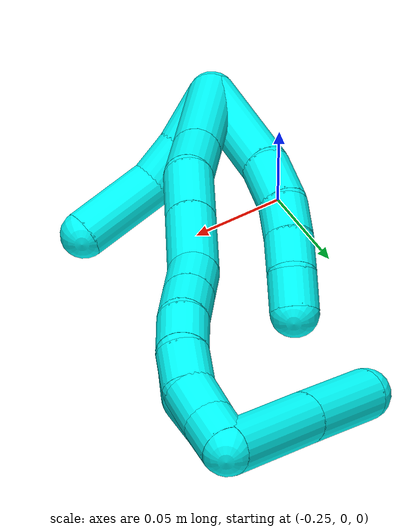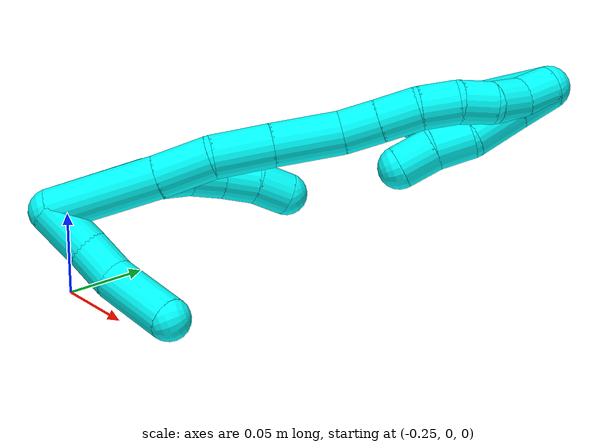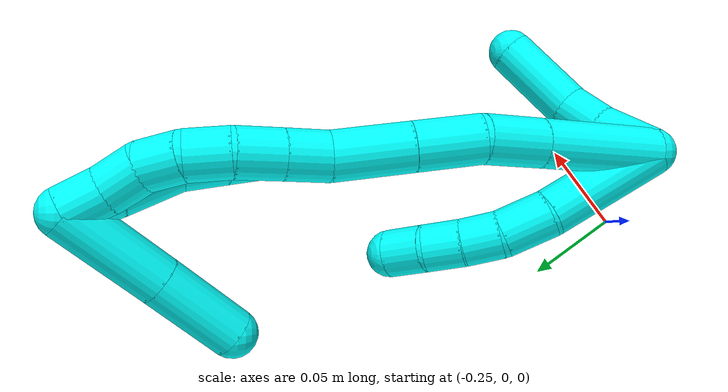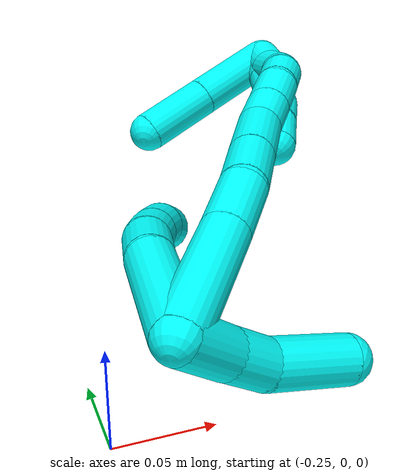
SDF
<sdf version="1.7">
 <world name="default">
  <model name="3">
   <static>0</static>
   <link name="3">
    <collision name="collision-cylinder-e_1_2_8">
     <pose>0.001299 0.016685 0.026839 -0.55619 0.04107 -0.011727</pose>
     <geometry><cylinder><radius>0.0125</radius><length>0.063258</length></cylinder></geometry>
     <surface>
      <friction><ode><mu>1.16</mu><mu2>1.16</mu2><slip1>0</slip1><slip2>0</slip2></ode></friction>
      <contact><ode><kp>1e+06</kp><kd>1</kd><max_vel>0</max_vel><min_depth>0.001</min_depth></ode></contact>
     </surface>
    </collision>
    <visual name="visual-cylinder-e_1_2_8">
     <pose>0.001299 0.016685 0.026839 -0.55619 0.04107 -0.011727</pose>
     <geometry><cylinder><radius>0.0125</radius><length>0.063258</length></cylinder></geometry>
     <material><ambient>0.003922 1 0.996078 1</ambient></material>
    </visual>
    <collision name="collision-cylinder-e_2_8_9">
     <pose>0.005613 0.039835 0.064734 -0.529141 0.231241 -0.062908</pose>
     <geometry><cylinder><radius>0.0125</radius><length>0.026316</length></cylinder></geometry>
     <surface>
      <friction><ode><mu>1.16</mu><mu2>1.16</mu2><slip1>0</slip1><slip2>0</slip2></ode></friction>
      <contact><ode><kp>1e+06</kp><kd>1</kd><max_vel>0</max_vel><min_depth>0.001</min_depth></ode></contact>
     </surface>
    </collision>
    <visual name="visual-cylinder-e_2_8_9">
     <pose>0.005613 0.039835 0.064734 -0.529141 0.231241 -0.062908</pose>
     <geometry><cylinder><radius>0.0125</radius><length>0.026316</length></cylinder></geometry>
     <material><ambient>0.003922 1 0.996078 1</ambient></material>
    </visual>
    <collision name="collision-cylinder-e_3_9_10">
     <pose>0.012804 0.049923 0.084127 -0.409996 0.430558 -0.090868</pose>
     <geometry><cylinder><radius>0.0125</radius><length>0.020007</length></cylinder></geometry>
     <surface>
      <friction><ode><mu>1.16</mu><mu2>1.16</mu2><slip1>0</slip1><slip2>0</slip2></ode></friction>
      <contact><ode><kp>1e+06</kp><kd>1</kd><max_vel>0</max_vel><min_depth>0.001</min_depth></ode></contact>
     </surface>
    </collision>
    <visual name="visual-cylinder-e_3_9_10">
     <pose>0.012804 0.049923 0.084127 -0.409996 0.430558 -0.090868</pose>
     <geometry><cylinder><radius>0.0125</radius><length>0.020007</length></cylinder></geometry>
     <material><ambient>0.003922 1 0.996078 1</ambient></material>
    </visual>
    <collision name="collision-cylinder-e_4_10_11">
     <pose>0.021813 0.056689 0.100701 -0.36448 0.50155 -0.094346</pose>
     <geometry><cylinder><radius>0.0125</radius><length>0.020108</length></cylinder></geometry>
     <surface>
      <friction><ode><mu>1.16</mu><mu2>1.16</mu2><slip1>0</slip1><slip2>0</slip2></ode></friction>
      <contact><ode><kp>1e+06</kp><kd>1</kd><max_vel>0</max_vel><min_depth>0.001</min_depth></ode></contact>
     </surface>
    </collision>
    <visual name="visual-cylinder-e_4_10_11">
     <pose>0.021813 0.056689 0.100701 -0.36448 0.50155 -0.094346</pose>
     <geometry><cylinder><radius>0.0125</radius><length>0.020108</length></cylinder></geometry>
     <material><ambient>0.003922 1 0.996078 1</ambient></material>
    </visual>
    <collision name="collision-cylinder-e_5_11_6">
     <pose>0.033063 0.063559 0.115871 -0.493286 0.68395 -0.178762</pose>
     <geometry><cylinder><radius>0.0125</radius><length>0.020311</length></cylinder></geometry>
     <surface>
      <friction><ode><mu>1.16</mu><mu2>1.16</mu2><slip1>0</slip1><slip2>0</slip2></ode></friction>
      <contact><ode><kp>1e+06</kp><kd>1</kd><max_vel>0</max_vel><min_depth>0.001</min_depth></ode></contact>
     </surface>
    </collision>
    <visual name="visual-cylinder-e_5_11_6">
     <pose>0.033063 0.063559 0.115871 -0.493286 0.68395 -0.178762</pose>
     <geometry><cylinder><radius>0.0125</radius><length>0.020311</length></cylinder></geometry>
     <material><ambient>0.003922 1 0.996078 1</ambient></material>
    </visual>
    <collision name="collision-cylinder-e_1_2_12">
     <pose>0.013862 -0.002428 0.006477 0.358642 1.10795 0.223328</pose>
     <geometry><cylinder><radius>0.0125</radius><length>0.030983</length></cylinder></geometry>
     <surface>
      <friction><ode><mu>1.16</mu><mu2>1.16</mu2><slip1>0</slip1><slip2>0</slip2></ode></friction>
      <contact><ode><kp>1e+06</kp><kd>1</kd><max_vel>0</max_vel><min_depth>0.001</min_depth></ode></contact>
     </surface>
    </collision>
    <visual name="visual-cylinder-e_1_2_12">
     <pose>0.013862 -0.002428 0.006477 0.358642 1.10795 0.223328</pose>
     <geometry><cylinder><radius>0.0125</radius><length>0.030983</length></cylinder></geometry>
     <material><ambient>0.003922 1 0.996078 1</ambient></material>
    </visual>
    <collision name="collision-cylinder-e_2_12_13">
     <pose>0.038049 -0.008316 0.017537 0.646677 1.06323 0.389146</pose>
     <geometry><cylinder><radius>0.0125</radius><length>0.02363</length></cylinder></geometry>
     <surface>
      <friction><ode><mu>1.16</mu><mu2>1.16</mu2><slip1>0</slip1><slip2>0</slip2></ode></friction>
      <contact><ode><kp>1e+06</kp><kd>1</kd><max_vel>0</max_vel><min_depth>0.001</min_depth></ode></contact>
     </surface>
    </collision>
    <visual name="visual-cylinder-e_2_12_13">
     <pose>0.038049 -0.008316 0.017537 0.646677 1.06323 0.389146</pose>
     <geometry><cylinder><radius>0.0125</radius><length>0.02363</length></cylinder></geometry>
     <material><ambient>0.003922 1 0.996078 1</ambient></material>
    </visual>
    <collision name="collision-cylinder-e_3_13_5">
     <pose>0.063622 -0.023836 0.033828 0.800204 0.736772 0.323641</pose>
     <geometry><cylinder><radius>0.0125</radius><length>0.045387</length></cylinder></geometry>
     <surface>
      <friction><ode><mu>1.16</mu><mu2>1.16</mu2><slip1>0</slip1><slip2>0</slip2></ode></friction>
      <contact><ode><kp>1e+06</kp><kd>1</kd><max_vel>0</max_vel><min_depth>0.001</min_depth></ode></contact>
     </surface>
    </collision>
    <visual name="visual-cylinder-e_3_13_5">
     <pose>0.063622 -0.023836 0.033828 0.800204 0.736772 0.323641</pose>
     <geometry><cylinder><radius>0.0125</radius><length>0.045387</length></cylinder></geometry>
     <material><ambient>0.003922 1 0.996078 1</ambient></material>
    </visual>
    <collision name="collision-cylinder-e_1_2_14">
     <pose>0.002096 -0.001605 0.032083 0.049989 0.065148 0.001629</pose>
     <geometry><cylinder><radius>0.0125</radius><length>0.064383</length></cylinder></geometry>
     <surface>
      <friction><ode><mu>1.16</mu><mu2>1.16</mu2><slip1>0</slip1><slip2>0</slip2></ode></friction>
      <contact><ode><kp>1e+06</kp><kd>1</kd><max_vel>0</max_vel><min_depth>0.001</min_depth></ode></contact>
     </surface>
    </collision>
    <visual name="visual-cylinder-e_1_2_14">
     <pose>0.002096 -0.001605 0.032083 0.049989 0.065148 0.001629</pose>
     <geometry><cylinder><radius>0.0125</radius><length>0.064383</length></cylinder></geometry>
     <material><ambient>0.003922 1 0.996078 1</ambient></material>
    </visual>
    <collision name="collision-cylinder-e_2_14_15">
     <pose>0.004465 -0.00415 0.080165 0.058681 0.017095 0.000502</pose>
     <geometry><cylinder><radius>0.0125</radius><length>0.032057</length></cylinder></geometry>
     <surface>
      <friction><ode><mu>1.16</mu><mu2>1.16</mu2><slip1>0</slip1><slip2>0</slip2></ode></friction>
      <contact><ode><kp>1e+06</kp><kd>1</kd><max_vel>0</max_vel><min_depth>0.001</min_depth></ode></contact>
     </surface>
    </collision>
    <visual name="visual-cylinder-e_2_14_15">
     <pose>0.004465 -0.00415 0.080165 0.058681 0.017095 0.000502</pose>
     <geometry><cylinder><radius>0.0125</radius><length>0.032057</length></cylinder></geometry>
     <material><ambient>0.003922 1 0.996078 1</ambient></material>
    </visual>
    <collision name="collision-cylinder-e_3_15_16">
     <pose>0.00759 -0.002275 0.112734 -0.168291 0.167991 -0.014202</pose>
     <geometry><cylinder><radius>0.0125</radius><length>0.034097</length></cylinder></geometry>
     <surface>
      <friction><ode><mu>1.16</mu><mu2>1.16</mu2><slip1>0</slip1><slip2>0</slip2></ode></friction>
      <contact><ode><kp>1e+06</kp><kd>1</kd><max_vel>0</max_vel><min_depth>0.001</min_depth></ode></contact>
     </surface>
    </collision>
    <visual name="visual-cylinder-e_3_15_16">
     <pose>0.00759 -0.002275 0.112734 -0.168291 0.167991 -0.014202</pose>
     <geometry><cylinder><radius>0.0125</radius><length>0.034097</length></cylinder></geometry>
     <material><ambient>0.003922 1 0.996078 1</ambient></material>
    </visual>
    <collision name="collision-cylinder-e_4_16_17">
     <pose>0.014131 0.003971 0.148773 -0.174393 0.184579 -0.016181</pose>
     <geometry><cylinder><radius>0.0125</radius><length>0.040218</length></cylinder></geometry>
     <surface>
      <friction><ode><mu>1.16</mu><mu2>1.16</mu2><slip1>0</slip1><slip2>0</slip2></ode></friction>
      <contact><ode><kp>1e+06</kp><kd>1</kd><max_vel>0</max_vel><min_depth>0.001</min_depth></ode></contact>
     </surface>
    </collision>
    <visual name="visual-cylinder-e_4_16_17">
     <pose>0.014131 0.003971 0.148773 -0.174393 0.184579 -0.016181</pose>
     <geometry><cylinder><radius>0.0125</radius><length>0.040218</length></cylinder></geometry>
     <material><ambient>0.003922 1 0.996078 1</ambient></material>
    </visual>
    <collision name="collision-cylinder-e_5_17_18">
     <pose>0.018581 0.007095 0.179333 0.027515 0.068268 0.00094</pose>
     <geometry><cylinder><radius>0.0125</radius><length>0.022245</length></cylinder></geometry>
     <surface>
      <friction><ode><mu>1.16</mu><mu2>1.16</mu2><slip1>0</slip1><slip2>0</slip2></ode></friction>
      <contact><ode><kp>1e+06</kp><kd>1</kd><max_vel>0</max_vel><min_depth>0.001</min_depth></ode></contact>
     </surface>
    </collision>
    <visual name="visual-cylinder-e_5_17_18">
     <pose>0.018581 0.007095 0.179333 0.027515 0.068268 0.00094</pose>
     <geometry><cylinder><radius>0.0125</radius><length>0.022245</length></cylinder></geometry>
     <material><ambient>0.003922 1 0.996078 1</ambient></material>
    </visual>
    <collision name="collision-cylinder-e_6_18_19">
     <pose>0.019992 0.006504 0.202068 0.02457 0.056021 0.000688</pose>
     <geometry><cylinder><radius>0.0125</radius><length>0.023329</length></cylinder></geometry>
     <surface>
      <friction><ode><mu>1.16</mu><mu2>1.16</mu2><slip1>0</slip1><slip2>0</slip2></ode></friction>
      <contact><ode><kp>1e+06</kp><kd>1</kd><max_vel>0</max_vel><min_depth>0.001</min_depth></ode></contact>
     </surface>
    </collision>
    <visual name="visual-cylinder-e_6_18_19">
     <pose>0.019992 0.006504 0.202068 0.02457 0.056021 0.000688</pose>
     <geometry><cylinder><radius>0.0125</radius><length>0.023329</length></cylinder></geometry>
     <material><ambient>0.003922 1 0.996078 1</ambient></material>
    </visual>
    <collision name="collision-cylinder-e_7_19_20">
     <pose>0.022893 0.007652 0.224407 -0.133287 0.20533 -0.013752</pose>
     <geometry><cylinder><radius>0.0125</radius><length>0.022049</length></cylinder></geometry>
     <surface>
      <friction><ode><mu>1.16</mu><mu2>1.16</mu2><slip1>0</slip1><slip2>0</slip2></ode></friction>
      <contact><ode><kp>1e+06</kp><kd>1</kd><max_vel>0</max_vel><min_depth>0.001</min_depth></ode></contact>
     </surface>
    </collision>
    <visual name="visual-cylinder-e_7_19_20">
     <pose>0.022893 0.007652 0.224407 -0.133287 0.20533 -0.013752</pose>
     <geometry><cylinder><radius>0.0125</radius><length>0.022049</length></cylinder></geometry>
     <material><ambient>0.003922 1 0.996078 1</ambient></material>
    </visual>
    <collision name="collision-cylinder-e_8_20_21">
     <pose>0.028904 0.012757 0.243801 -0.399452 0.379285 -0.077671</pose>
     <geometry><cylinder><radius>0.0125</radius><length>0.020324</length></cylinder></geometry>
     <surface>
      <friction><ode><mu>1.16</mu><mu2>1.16</mu2><slip1>0</slip1><slip2>0</slip2></ode></friction>
      <contact><ode><kp>1e+06</kp><kd>1</kd><max_vel>0</max_vel><min_depth>0.001</min_depth></ode></contact>
     </surface>
    </collision>
    <visual name="visual-cylinder-e_8_20_21">
     <pose>0.028904 0.012757 0.243801 -0.399452 0.379285 -0.077671</pose>
     <geometry><cylinder><radius>0.0125</radius><length>0.020324</length></cylinder></geometry>
     <material><ambient>0.003922 1 0.996078 1</ambient></material>
    </visual>
    <collision name="collision-cylinder-e_9_21_22">
     <pose>0.034448 0.022628 0.260374 -0.666828 0.17592 -0.061067</pose>
     <geometry><cylinder><radius>0.0125</radius><length>0.020362</length></cylinder></geometry>
     <surface>
      <friction><ode><mu>1.16</mu><mu2>1.16</mu2><slip1>0</slip1><slip2>0</slip2></ode></friction>
      <contact><ode><kp>1e+06</kp><kd>1</kd><max_vel>0</max_vel><min_depth>0.001</min_depth></ode></contact>
     </surface>
    </collision>
    <visual name="visual-cylinder-e_9_21_22">
     <pose>0.034448 0.022628 0.260374 -0.666828 0.17592 -0.061067</pose>
     <geometry><cylinder><radius>0.0125</radius><length>0.020362</length></cylinder></geometry>
     <material><ambient>0.003922 1 0.996078 1</ambient></material>
    </visual>
    <collision name="collision-cylinder-e_10_22_1">
     <pose>0.036144 0.033778 0.277475 -0.492564 -0.008229 0.002069</pose>
     <geometry><cylinder><radius>0.0125</radius><length>0.020937</length></cylinder></geometry>
     <surface>
      <friction><ode><mu>1.16</mu><mu2>1.16</mu2><slip1>0</slip1><slip2>0</slip2></ode></friction>
      <contact><ode><kp>1e+06</kp><kd>1</kd><max_vel>0</max_vel><min_depth>0.001</min_depth></ode></contact>
     </surface>
    </collision>
    <visual name="visual-cylinder-e_10_22_1">
     <pose>0.036144 0.033778 0.277475 -0.492564 -0.008229 0.002069</pose>
     <geometry><cylinder><radius>0.0125</radius><length>0.020937</length></cylinder></geometry>
     <material><ambient>0.003922 1 0.996078 1</ambient></material>
    </visual>
    <collision name="collision-cylinder-e_1_1_23">
     <pose>0.038182 0.034793 0.274937 2.81866 0.16969 0.962422</pose>
     <geometry><cylinder><radius>0.0125</radius><length>0.025166</length></cylinder></geometry>
     <surface>
      <friction><ode><mu>1.16</mu><mu2>1.16</mu2><slip1>0</slip1><slip2>0</slip2></ode></friction>
      <contact><ode><kp>1e+06</kp><kd>1</kd><max_vel>0</max_vel><min_depth>0.001</min_depth></ode></contact>
     </surface>
    </collision>
    <visual name="visual-cylinder-e_1_1_23">
     <pose>0.038182 0.034793 0.274937 2.81866 0.16969 0.962422</pose>
     <geometry><cylinder><radius>0.0125</radius><length>0.025166</length></cylinder></geometry>
     <material><ambient>0.003922 1 0.996078 1</ambient></material>
    </visual>
    <collision name="collision-cylinder-e_2_23_24">
     <pose>0.043152 0.025579 0.248827 2.78912 0.18397 0.955871</pose>
     <geometry><cylinder><radius>0.0125</radius><length>0.031103</length></cylinder></geometry>
     <surface>
      <friction><ode><mu>1.16</mu><mu2>1.16</mu2><slip1>0</slip1><slip2>0</slip2></ode></friction>
      <contact><ode><kp>1e+06</kp><kd>1</kd><max_vel>0</max_vel><min_depth>0.001</min_depth></ode></contact>
     </surface>
    </collision>
    <visual name="visual-cylinder-e_2_23_24">
     <pose>0.043152 0.025579 0.248827 2.78912 0.18397 0.955871</pose>
     <geometry><cylinder><radius>0.0125</radius><length>0.031103</length></cylinder></geometry>
     <material><ambient>0.003922 1 0.996078 1</ambient></material>
    </visual>
    <collision name="collision-cylinder-e_3_24_25">
     <pose>0.0454 0.018525 0.223509 2.98112 -0.053725 -0.644966</pose>
     <geometry><cylinder><radius>0.0125</radius><length>0.022255</length></cylinder></geometry>
     <surface>
      <friction><ode><mu>1.16</mu><mu2>1.16</mu2><slip1>0</slip1><slip2>0</slip2></ode></friction>
      <contact><ode><kp>1e+06</kp><kd>1</kd><max_vel>0</max_vel><min_depth>0.001</min_depth></ode></contact>
     </surface>
    </collision>
    <visual name="visual-cylinder-e_3_24_25">
     <pose>0.0454 0.018525 0.223509 2.98112 -0.053725 -0.644966</pose>
     <geometry><cylinder><radius>0.0125</radius><length>0.022255</length></cylinder></geometry>
     <material><ambient>0.003922 1 0.996078 1</ambient></material>
    </visual>
    <collision name="collision-cylinder-e_4_25_4">
     <pose>0.046239 0.015836 0.201938 3.05556 0.134237 2.00251</pose>
     <geometry><cylinder><radius>0.0125</radius><length>0.021476</length></cylinder></geometry>
     <surface>
      <friction><ode><mu>1.16</mu><mu2>1.16</mu2><slip1>0</slip1><slip2>0</slip2></ode></friction>
      <contact><ode><kp>1e+06</kp><kd>1</kd><max_vel>0</max_vel><min_depth>0.001</min_depth></ode></contact>
     </surface>
    </collision>
    <visual name="visual-cylinder-e_4_25_4">
     <pose>0.046239 0.015836 0.201938 3.05556 0.134237 2.00251</pose>
     <geometry><cylinder><radius>0.0125</radius><length>0.021476</length></cylinder></geometry>
     <material><ambient>0.003922 1 0.996078 1</ambient></material>
    </visual>
    <collision name="collision-cylinder-e_1_1_26">
     <pose>0.032841 0.05536 0.265088 -2.48564 -0.11741 0.342079</pose>
     <geometry><cylinder><radius>0.0125</radius><length>0.054917</length></cylinder></geometry>
     <surface>
      <friction><ode><mu>1.16</mu><mu2>1.16</mu2><slip1>0</slip1><slip2>0</slip2></ode></friction>
      <contact><ode><kp>1e+06</kp><kd>1</kd><max_vel>0</max_vel><min_depth>0.001</min_depth></ode></contact>
     </surface>
    </collision>
    <visual name="visual-cylinder-e_1_1_26">
     <pose>0.032841 0.05536 0.265088 -2.48564 -0.11741 0.342079</pose>
     <geometry><cylinder><radius>0.0125</radius><length>0.054917</length></cylinder></geometry>
     <material><ambient>0.003922 1 0.996078 1</ambient></material>
    </visual>
    <collision name="collision-cylinder-e_2_26_3">
     <pose>0.027088 0.085798 0.22584 -2.47748 -0.112771 0.324507</pose>
     <geometry><cylinder><radius>0.0125</radius><length>0.045083</length></cylinder></geometry>
     <surface>
      <friction><ode><mu>1.16</mu><mu2>1.16</mu2><slip1>0</slip1><slip2>0</slip2></ode></friction>
      <contact><ode><kp>1e+06</kp><kd>1</kd><max_vel>0</max_vel><min_depth>0.001</min_depth></ode></contact>
     </surface>
    </collision>
    <visual name="visual-cylinder-e_2_26_3">
     <pose>0.027088 0.085798 0.22584 -2.47748 -0.112771 0.324507</pose>
     <geometry><cylinder><radius>0.0125</radius><length>0.045083</length></cylinder></geometry>
     <material><ambient>0.003922 1 0.996078 1</ambient></material>
    </visual>
    <collision name="collision-sphere-3">
     <pose>0.024551 0.099603 0.208202 0 -0 0</pose>
     <geometry><sphere><radius>0.0125</radius></sphere></geometry>
     <surface>
      <friction><ode><mu>1.16</mu><mu2>1.16</mu2><slip1>0</slip1><slip2>0</slip2></ode></friction>
      <contact><ode><kp>1e+06</kp><kd>1</kd><max_vel>0</max_vel><min_depth>0.001</min_depth></ode></contact>
     </surface>
    </collision>
    <visual name="visual-sphere-3">
     <pose>0.024551 0.099603 0.208202 0 -0 0</pose>
     <geometry><sphere><radius>0.0125</radius></sphere></geometry>
     <material><ambient>0.003922 1 0.996078 1</ambient></material>
    </visual>
    <collision name="collision-sphere-26">
     <pose>0.029624 0.071992 0.243478 0 -0 0</pose>
     <geometry><sphere><radius>0.0125</radius></sphere></geometry>
     <surface>
      <friction><ode><mu>1.16</mu><mu2>1.16</mu2><slip1>0</slip1><slip2>0</slip2></ode></friction>
      <contact><ode><kp>1e+06</kp><kd>1</kd><max_vel>0</max_vel><min_depth>0.001</min_depth></ode></contact>
     </surface>
    </collision>
    <visual name="visual-sphere-26">
     <pose>0.029624 0.071992 0.243478 0 -0 0</pose>
     <geometry><sphere><radius>0.0125</radius></sphere></geometry>
     <material><ambient>0.003922 1 0.996078 1</ambient></material>
    </visual>
    <collision name="collision-sphere-4">
     <pose>0.047676 0.014921 0.191336 0 -0 0</pose>
     <geometry><sphere><radius>0.0125</radius></sphere></geometry>
     <surface>
      <friction><ode><mu>1.16</mu><mu2>1.16</mu2><slip1>0</slip1><slip2>0</slip2></ode></friction>
      <contact><ode><kp>1e+06</kp><kd>1</kd><max_vel>0</max_vel><min_depth>0.001</min_depth></ode></contact>
     </surface>
    </collision>
    <visual name="visual-sphere-4">
     <pose>0.047676 0.014921 0.191336 0 -0 0</pose>
     <geometry><sphere><radius>0.0125</radius></sphere></geometry>
     <material><ambient>0.003922 1 0.996078 1</ambient></material>
    </visual>
    <collision name="collision-sphere-25">
     <pose>0.044802 0.01675 0.21254 0 -0 0</pose>
     <geometry><sphere><radius>0.0125</radius></sphere></geometry>
     <surface>
      <friction><ode><mu>1.16</mu><mu2>1.16</mu2><slip1>0</slip1><slip2>0</slip2></ode></friction>
      <contact><ode><kp>1e+06</kp><kd>1</kd><max_vel>0</max_vel><min_depth>0.001</min_depth></ode></contact>
     </surface>
    </collision>
    <visual name="visual-sphere-25">
     <pose>0.044802 0.01675 0.21254 0 -0 0</pose>
     <geometry><sphere><radius>0.0125</radius></sphere></geometry>
     <material><ambient>0.003922 1 0.996078 1</ambient></material>
    </visual>
    <collision name="collision-sphere-24">
     <pose>0.045997 0.020301 0.234478 0 -0 0</pose>
     <geometry><sphere><radius>0.0125</radius></sphere></geometry>
     <surface>
      <friction><ode><mu>1.16</mu><mu2>1.16</mu2><slip1>0</slip1><slip2>0</slip2></ode></friction>
      <contact><ode><kp>1e+06</kp><kd>1</kd><max_vel>0</max_vel><min_depth>0.001</min_depth></ode></contact>
     </surface>
    </collision>
    <visual name="visual-sphere-24">
     <pose>0.045997 0.020301 0.234478 0 -0 0</pose>
     <geometry><sphere><radius>0.0125</radius></sphere></geometry>
     <material><ambient>0.003922 1 0.996078 1</ambient></material>
    </visual>
    <collision name="collision-sphere-23">
     <pose>0.040307 0.030857 0.263176 0 -0 0</pose>
     <geometry><sphere><radius>0.0125</radius></sphere></geometry>
     <surface>
      <friction><ode><mu>1.16</mu><mu2>1.16</mu2><slip1>0</slip1><slip2>0</slip2></ode></friction>
      <contact><ode><kp>1e+06</kp><kd>1</kd><max_vel>0</max_vel><min_depth>0.001</min_depth></ode></contact>
     </surface>
    </collision>
    <visual name="visual-sphere-23">
     <pose>0.040307 0.030857 0.263176 0 -0 0</pose>
     <geometry><sphere><radius>0.0125</radius></sphere></geometry>
     <material><ambient>0.003922 1 0.996078 1</ambient></material>
    </visual>
    <collision name="collision-sphere-1">
     <pose>0.036057 0.038728 0.286698 0 -0 0</pose>
     <geometry><sphere><radius>0.0125</radius></sphere></geometry>
     <surface>
      <friction><ode><mu>1.16</mu><mu2>1.16</mu2><slip1>0</slip1><slip2>0</slip2></ode></friction>
      <contact><ode><kp>1e+06</kp><kd>1</kd><max_vel>0</max_vel><min_depth>0.001</min_depth></ode></contact>
     </surface>
    </collision>
    <visual name="visual-sphere-1">
     <pose>0.036057 0.038728 0.286698 0 -0 0</pose>
     <geometry><sphere><radius>0.0125</radius></sphere></geometry>
     <material><ambient>0.003922 1 0.996078 1</ambient></material>
    </visual>
    <collision name="collision-sphere-22">
     <pose>0.03623 0.028828 0.268251 0 -0 0</pose>
     <geometry><sphere><radius>0.0125</radius></sphere></geometry>
     <surface>
      <friction><ode><mu>1.16</mu><mu2>1.16</mu2><slip1>0</slip1><slip2>0</slip2></ode></friction>
      <contact><ode><kp>1e+06</kp><kd>1</kd><max_vel>0</max_vel><min_depth>0.001</min_depth></ode></contact>
     </surface>
    </collision>
    <visual name="visual-sphere-22">
     <pose>0.03623 0.028828 0.268251 0 -0 0</pose>
     <geometry><sphere><radius>0.0125</radius></sphere></geometry>
     <material><ambient>0.003922 1 0.996078 1</ambient></material>
    </visual>
    <collision name="collision-sphere-21">
     <pose>0.032666 0.016429 0.252498 0 -0 0</pose>
     <geometry><sphere><radius>0.0125</radius></sphere></geometry>
     <surface>
      <friction><ode><mu>1.16</mu><mu2>1.16</mu2><slip1>0</slip1><slip2>0</slip2></ode></friction>
      <contact><ode><kp>1e+06</kp><kd>1</kd><max_vel>0</max_vel><min_depth>0.001</min_depth></ode></contact>
     </surface>
    </collision>
    <visual name="visual-sphere-21">
     <pose>0.032666 0.016429 0.252498 0 -0 0</pose>
     <geometry><sphere><radius>0.0125</radius></sphere></geometry>
     <material><ambient>0.003922 1 0.996078 1</ambient></material>
    </visual>
    <collision name="collision-sphere-6">
     <pose>0.03948 0.067286 0.122804 0 -0 0</pose>
     <geometry><sphere><radius>0.0125</radius></sphere></geometry>
     <surface>
      <friction><ode><mu>1.16</mu><mu2>1.16</mu2><slip1>0</slip1><slip2>0</slip2></ode></friction>
      <contact><ode><kp>1e+06</kp><kd>1</kd><max_vel>0</max_vel><min_depth>0.001</min_depth></ode></contact>
     </surface>
    </collision>
    <visual name="visual-sphere-6">
     <pose>0.03948 0.067286 0.122804 0 -0 0</pose>
     <geometry><sphere><radius>0.0125</radius></sphere></geometry>
     <material><ambient>0.003922 1 0.996078 1</ambient></material>
    </visual>
    <collision name="collision-sphere-11">
     <pose>0.026646 0.059832 0.108937 0 -0 0</pose>
     <geometry><sphere><radius>0.0125</radius></sphere></geometry>
     <surface>
      <friction><ode><mu>1.16</mu><mu2>1.16</mu2><slip1>0</slip1><slip2>0</slip2></ode></friction>
      <contact><ode><kp>1e+06</kp><kd>1</kd><max_vel>0</max_vel><min_depth>0.001</min_depth></ode></contact>
     </surface>
    </collision>
    <visual name="visual-sphere-11">
     <pose>0.026646 0.059832 0.108937 0 -0 0</pose>
     <geometry><sphere><radius>0.0125</radius></sphere></geometry>
     <material><ambient>0.003922 1 0.996078 1</ambient></material>
    </visual>
    <collision name="collision-sphere-10">
     <pose>0.016979 0.053547 0.092464 0 -0 0</pose>
     <geometry><sphere><radius>0.0125</radius></sphere></geometry>
     <surface>
      <friction><ode><mu>1.16</mu><mu2>1.16</mu2><slip1>0</slip1><slip2>0</slip2></ode></friction>
      <contact><ode><kp>1e+06</kp><kd>1</kd><max_vel>0</max_vel><min_depth>0.001</min_depth></ode></contact>
     </surface>
    </collision>
    <visual name="visual-sphere-10">
     <pose>0.016979 0.053547 0.092464 0 -0 0</pose>
     <geometry><sphere><radius>0.0125</radius></sphere></geometry>
     <material><ambient>0.003922 1 0.996078 1</ambient></material>
    </visual>
    <collision name="collision-sphere-9">
     <pose>0.008628 0.0463 0.07579 0 -0 0</pose>
     <geometry><sphere><radius>0.0125</radius></sphere></geometry>
     <surface>
      <friction><ode><mu>1.16</mu><mu2>1.16</mu2><slip1>0</slip1><slip2>0</slip2></ode></friction>
      <contact><ode><kp>1e+06</kp><kd>1</kd><max_vel>0</max_vel><min_depth>0.001</min_depth></ode></contact>
     </surface>
    </collision>
    <visual name="visual-sphere-9">
     <pose>0.008628 0.0463 0.07579 0 -0 0</pose>
     <geometry><sphere><radius>0.0125</radius></sphere></geometry>
     <material><ambient>0.003922 1 0.996078 1</ambient></material>
    </visual>
    <collision name="collision-sphere-2">
     <geometry><sphere><radius>0.0125</radius></sphere></geometry>
     <surface>
      <friction><ode><mu>1.16</mu><mu2>1.16</mu2><slip1>0</slip1><slip2>0</slip2></ode></friction>
      <contact><ode><kp>1e+06</kp><kd>1</kd><max_vel>0</max_vel><min_depth>0.001</min_depth></ode></contact>
     </surface>
    </collision>
    <visual name="visual-sphere-2">
     <geometry><sphere><radius>0.0125</radius></sphere></geometry>
     <material><ambient>0.003922 1 0.996078 1</ambient></material>
    </visual>
    <collision name="collision-sphere-19">
     <pose>0.020645 0.006218 0.21371 0 -0 0</pose>
     <geometry><sphere><radius>0.0125</radius></sphere></geometry>
     <surface>
      <friction><ode><mu>1.16</mu><mu2>1.16</mu2><slip1>0</slip1><slip2>0</slip2></ode></friction>
      <contact><ode><kp>1e+06</kp><kd>1</kd><max_vel>0</max_vel><min_depth>0.001</min_depth></ode></contact>
     </surface>
    </collision>
    <visual name="visual-sphere-19">
     <pose>0.020645 0.006218 0.21371 0 -0 0</pose>
     <geometry><sphere><radius>0.0125</radius></sphere></geometry>
     <material><ambient>0.003922 1 0.996078 1</ambient></material>
    </visual>
    <collision name="collision-sphere-8">
     <pose>0.002597 0.033369 0.053678 0 -0 0</pose>
     <geometry><sphere><radius>0.0125</radius></sphere></geometry>
     <surface>
      <friction><ode><mu>1.16</mu><mu2>1.16</mu2><slip1>0</slip1><slip2>0</slip2></ode></friction>
      <contact><ode><kp>1e+06</kp><kd>1</kd><max_vel>0</max_vel><min_depth>0.001</min_depth></ode></contact>
     </surface>
    </collision>
    <visual name="visual-sphere-8">
     <pose>0.002597 0.033369 0.053678 0 -0 0</pose>
     <geometry><sphere><radius>0.0125</radius></sphere></geometry>
     <material><ambient>0.003922 1 0.996078 1</ambient></material>
    </visual>
    <collision name="collision-sphere-12">
     <pose>0.027723 -0.004856 0.012954 0 -0 0</pose>
     <geometry><sphere><radius>0.0125</radius></sphere></geometry>
     <surface>
      <friction><ode><mu>1.16</mu><mu2>1.16</mu2><slip1>0</slip1><slip2>0</slip2></ode></friction>
      <contact><ode><kp>1e+06</kp><kd>1</kd><max_vel>0</max_vel><min_depth>0.001</min_depth></ode></contact>
     </surface>
    </collision>
    <visual name="visual-sphere-12">
     <pose>0.027723 -0.004856 0.012954 0 -0 0</pose>
     <geometry><sphere><radius>0.0125</radius></sphere></geometry>
     <material><ambient>0.003922 1 0.996078 1</ambient></material>
    </visual>
    <collision name="collision-sphere-13">
     <pose>0.048374 -0.011776 0.02212 0 -0 0</pose>
     <geometry><sphere><radius>0.0125</radius></sphere></geometry>
     <surface>
      <friction><ode><mu>1.16</mu><mu2>1.16</mu2><slip1>0</slip1><slip2>0</slip2></ode></friction>
      <contact><ode><kp>1e+06</kp><kd>1</kd><max_vel>0</max_vel><min_depth>0.001</min_depth></ode></contact>
     </surface>
    </collision>
    <visual name="visual-sphere-13">
     <pose>0.048374 -0.011776 0.02212 0 -0 0</pose>
     <geometry><sphere><radius>0.0125</radius></sphere></geometry>
     <material><ambient>0.003922 1 0.996078 1</ambient></material>
    </visual>
    <collision name="collision-sphere-5">
     <pose>0.07887 -0.035895 0.045535 0 -0 0</pose>
     <geometry><sphere><radius>0.0125</radius></sphere></geometry>
     <surface>
      <friction><ode><mu>1.16</mu><mu2>1.16</mu2><slip1>0</slip1><slip2>0</slip2></ode></friction>
      <contact><ode><kp>1e+06</kp><kd>1</kd><max_vel>0</max_vel><min_depth>0.001</min_depth></ode></contact>
     </surface>
    </collision>
    <visual name="visual-sphere-5">
     <pose>0.07887 -0.035895 0.045535 0 -0 0</pose>
     <geometry><sphere><radius>0.0125</radius></sphere></geometry>
     <material><ambient>0.003922 1 0.996078 1</ambient></material>
    </visual>
    <collision name="collision-sphere-14">
     <pose>0.004191 -0.00321 0.064166 0 -0 0</pose>
     <geometry><sphere><radius>0.0125</radius></sphere></geometry>
     <surface>
      <friction><ode><mu>1.16</mu><mu2>1.16</mu2><slip1>0</slip1><slip2>0</slip2></ode></friction>
      <contact><ode><kp>1e+06</kp><kd>1</kd><max_vel>0</max_vel><min_depth>0.001</min_depth></ode></contact>
     </surface>
    </collision>
    <visual name="visual-sphere-14">
     <pose>0.004191 -0.00321 0.064166 0 -0 0</pose>
     <geometry><sphere><radius>0.0125</radius></sphere></geometry>
     <material><ambient>0.003922 1 0.996078 1</ambient></material>
    </visual>
    <collision name="collision-sphere-15">
     <pose>0.004739 -0.00509 0.096163 0 -0 0</pose>
     <geometry><sphere><radius>0.0125</radius></sphere></geometry>
     <surface>
      <friction><ode><mu>1.16</mu><mu2>1.16</mu2><slip1>0</slip1><slip2>0</slip2></ode></friction>
      <contact><ode><kp>1e+06</kp><kd>1</kd><max_vel>0</max_vel><min_depth>0.001</min_depth></ode></contact>
     </surface>
    </collision>
    <visual name="visual-sphere-15">
     <pose>0.004739 -0.00509 0.096163 0 -0 0</pose>
     <geometry><sphere><radius>0.0125</radius></sphere></geometry>
     <material><ambient>0.003922 1 0.996078 1</ambient></material>
    </visual>
    <collision name="collision-sphere-16">
     <pose>0.010441 0.000541 0.129306 0 -0 0</pose>
     <geometry><sphere><radius>0.0125</radius></sphere></geometry>
     <surface>
      <friction><ode><mu>1.16</mu><mu2>1.16</mu2><slip1>0</slip1><slip2>0</slip2></ode></friction>
      <contact><ode><kp>1e+06</kp><kd>1</kd><max_vel>0</max_vel><min_depth>0.001</min_depth></ode></contact>
     </surface>
    </collision>
    <visual name="visual-sphere-16">
     <pose>0.010441 0.000541 0.129306 0 -0 0</pose>
     <geometry><sphere><radius>0.0125</radius></sphere></geometry>
     <material><ambient>0.003922 1 0.996078 1</ambient></material>
    </visual>
    <collision name="collision-sphere-17">
     <pose>0.017822 0.0074 0.16824 0 -0 0</pose>
     <geometry><sphere><radius>0.0125</radius></sphere></geometry>
     <surface>
      <friction><ode><mu>1.16</mu><mu2>1.16</mu2><slip1>0</slip1><slip2>0</slip2></ode></friction>
      <contact><ode><kp>1e+06</kp><kd>1</kd><max_vel>0</max_vel><min_depth>0.001</min_depth></ode></contact>
     </surface>
    </collision>
    <visual name="visual-sphere-17">
     <pose>0.017822 0.0074 0.16824 0 -0 0</pose>
     <geometry><sphere><radius>0.0125</radius></sphere></geometry>
     <material><ambient>0.003922 1 0.996078 1</ambient></material>
    </visual>
    <collision name="collision-sphere-18">
     <pose>0.019339 0.00679 0.190425 0 -0 0</pose>
     <geometry><sphere><radius>0.0125</radius></sphere></geometry>
     <surface>
      <friction><ode><mu>1.16</mu><mu2>1.16</mu2><slip1>0</slip1><slip2>0</slip2></ode></friction>
      <contact><ode><kp>1e+06</kp><kd>1</kd><max_vel>0</max_vel><min_depth>0.001</min_depth></ode></contact>
     </surface>
    </collision>
    <visual name="visual-sphere-18">
     <pose>0.019339 0.00679 0.190425 0 -0 0</pose>
     <geometry><sphere><radius>0.0125</radius></sphere></geometry>
     <material><ambient>0.003922 1 0.996078 1</ambient></material>
    </visual>
    <collision name="collision-sphere-20">
     <pose>0.025141 0.009086 0.235104 0 -0 0</pose>
     <geometry><sphere><radius>0.0125</radius></sphere></geometry>
     <surface>
      <friction><ode><mu>1.16</mu><mu2>1.16</mu2><slip1>0</slip1><slip2>0</slip2></ode></friction>
      <contact><ode><kp>1e+06</kp><kd>1</kd><max_vel>0</max_vel><min_depth>0.001</min_depth></ode></contact>
     </surface>
    </collision>
    <visual name="visual-sphere-20">
     <pose>0.025141 0.009086 0.235104 0 -0 0</pose>
     <geometry><sphere><radius>0.0125</radius></sphere></geometry>
     <material><ambient>0.003922 1 0.996078 1</ambient></material>
    </visual>
    <inertial>
     <pose>0.023572 0.020351 0.139336 0 -0 0</pose>
     <mass>0.75</mass>
     <inertia>
      <ixx>0.000144</ixx>
      <ixy>0</ixy>
      <ixz>0</ixz>
      <iyy>9.1e-05</iyy>
      <iyz>0</iyz>
      <izz>-2.2e-05</izz>
     </inertia>
    </inertial>
   </link>
   <pose>-0.225529 -0.026804 0.066776 -0.766717 1.05814 0.137365</pose>
  </model>
 </world>
</sdf>
